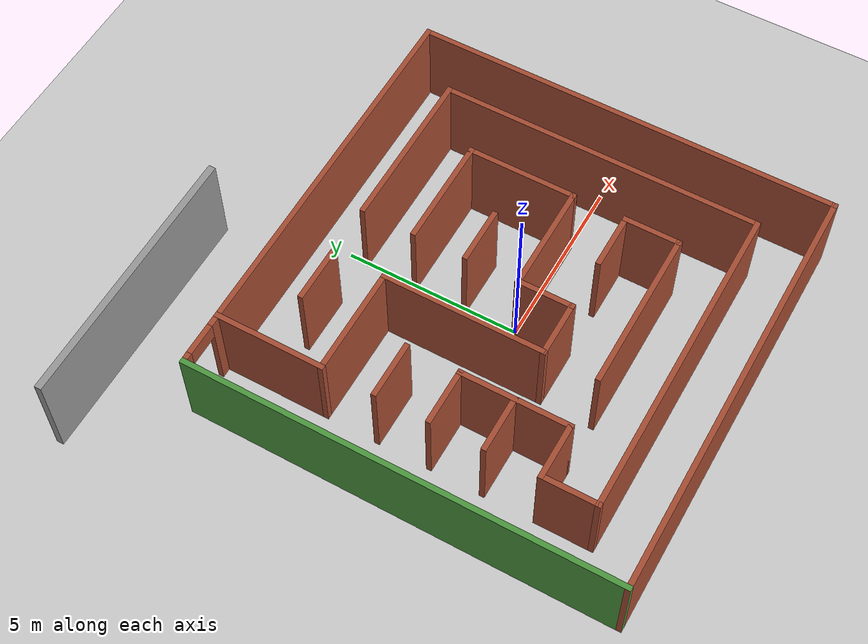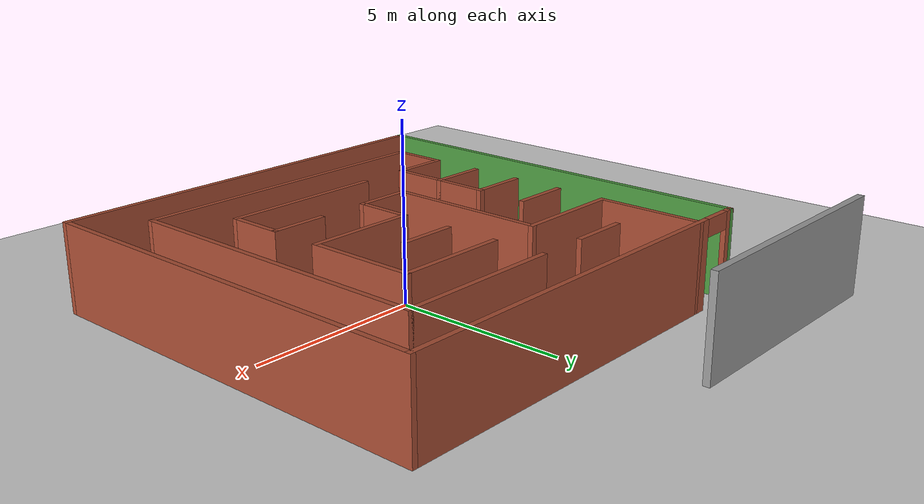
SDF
<sdf version="1.6">
 <world name="default">
  <light name="sun" type="directional">
   <pose>0 0 10 0 -0 0</pose>
   <diffuse>0.8 0.8 0.8 1</diffuse>
   <specular>0.1 0.1 0.1 1</specular>
   <attenuation>
    <range>1000</range>
    <constant>0.9</constant>
    <linear>0.01</linear>
    <quadratic>0.001</quadratic>
   </attenuation>
   <direction>-0.5 0.5 -1</direction>
  </light>
  <model name="ground_plane">
   <static>1</static>
   <link name="link">
    <collision name="collision">
     <geometry><plane><normal>0 0 1</normal><size>100 100</size></plane></geometry>
     <surface><friction><ode><mu>100</mu><mu2>50</mu2></ode></friction></surface>
    </collision>
    <visual name="visual">
     <cast_shadows>0</cast_shadows>
     <geometry><plane><normal>0 0 1</normal><size>100 100</size></plane></geometry>
     <material>
      <script><uri>file://media/materials/scripts/gazebo.material</uri><name>Gazebo/Grey</name></script>
     </material>
    </visual>
   </link>
  </model>
  <gravity>0 0 -9.8</gravity>
  <magnetic_field>6e-06 2.3e-05 -4.2e-05</magnetic_field>
  <atmosphere type="adiabatic"/>
  <physics name="default_physics" default="0" type="ode">
   <max_step_size>0.001</max_step_size>
   <real_time_factor>1</real_time_factor>
   <real_time_update_rate>1000</real_time_update_rate>
  </physics>
  <scene><ambient>0.4 0.4 0.4 1</ambient><background>0.7 0.7 0.7 1</background><shadows>1</shadows></scene>
  <spherical_coordinates>
   <surface_model>EARTH_WGS84</surface_model>
   <latitude_deg>0</latitude_deg>
   <longitude_deg>0</longitude_deg>
   <elevation>0</elevation>
   <heading_deg>0</heading_deg>
  </spherical_coordinates>
  <model name="maze12_brick">
   <link name="Wall_0">
    <collision name="Wall_0_Collision">
     <geometry><box><size>12.15 0.15 2.5</size></box></geometry>
     <pose>0 0 1.25 0 -0 0</pose>
    </collision>
    <visual name="Wall_0_Visual">
     <pose>0 0 1.25 0 -0 0</pose>
     <geometry><box><size>12.15 0.15 2.5</size></box></geometry>
     <material>
      <script>
       <uri>model://materials/scripts</uri>
       <uri>model://materials/textures</uri>
       <name>GrassTest</name>
      </script>
      <ambient>1 1 1 1</ambient>
     </material>
    </visual>
    <pose>-6 0 0 0 -0 1.5708</pose>
   </link>
   <link name="Wall_1">
    <pose>0 6 0 0 -0 0</pose>
    <visual name="Wall_1_Visual_0">
     <pose>-5.9077 0 1.25 0 -0 0</pose>
     <geometry><box><size>0.334593 0.15 2.5</size></box></geometry>
     <material>
      <script><uri>file://media/materials/scripts/gazebo.material</uri><name>Gazebo/Bricks</name></script>
      <ambient>1 1 1 1</ambient>
     </material>
    </visual>
    <collision name="Wall_1_Collision_0">
     <geometry><box><size>0.334593 0.15 2.5</size></box></geometry>
     <pose>-5.9077 0 1.25 0 -0 0</pose>
    </collision>
    <visual name="Wall_1_Visual_1">
     <pose>0.617297 0 1.25 0 -0 0</pose>
     <geometry><box><size>10.9154 0.15 2.5</size></box></geometry>
     <material>
      <script><uri>file://media/materials/scripts/gazebo.material</uri><name>Gazebo/Bricks</name></script>
      <ambient>1 1 1 1</ambient>
     </material>
    </visual>
    <collision name="Wall_1_Collision_1">
     <geometry><box><size>10.9154 0.15 2.5</size></box></geometry>
     <pose>0.617297 0 1.25 0 -0 0</pose>
    </collision>
    <visual name="Wall_1_Visual_2">
     <pose>-5.29041 0 2.25 0 -0 0</pose>
     <geometry><box><size>0.9 0.15 0.5</size></box></geometry>
     <material>
      <script><uri>file://media/materials/scripts/gazebo.material</uri><name>Gazebo/Bricks</name></script>
      <ambient>1 1 1 1</ambient>
     </material>
    </visual>
    <collision name="Wall_1_Collision_2">
     <geometry><box><size>0.9 0.15 0.5</size></box></geometry>
     <pose>-5.29041 0 2.25 0 -0 0</pose>
    </collision>
   </link>
   <link name="Wall_2">
    <collision name="Wall_2_Collision">
     <geometry><box><size>12.15 0.15 2.5</size></box></geometry>
     <pose>0 0 1.25 0 -0 0</pose>
    </collision>
    <visual name="Wall_2_Visual">
     <pose>0 0 1.25 0 -0 0</pose>
     <geometry><box><size>12.15 0.15 2.5</size></box></geometry>
     <material>
      <script><uri>file://media/materials/scripts/gazebo.material</uri><name>Gazebo/Bricks</name></script>
      <ambient>1 1 1 1</ambient>
     </material>
    </visual>
    <pose>6 0 0 0 0 -1.5708</pose>
   </link>
   <link name="Wall_26">
    <collision name="Wall_26_Collision">
     <geometry><box><size>3.15 0.15 2.5</size></box></geometry>
     <pose>0 0 1.25 0 -0 0</pose>
    </collision>
    <visual name="Wall_26_Visual">
     <pose>0 0 1.25 0 -0 0</pose>
     <geometry><box><size>3.15 0.15 2.5</size></box></geometry>
     <material>
      <script><uri>file://media/materials/scripts/gazebo.material</uri><name>Gazebo/Bricks</name></script>
      <ambient>1 1 1 1</ambient>
     </material>
    </visual>
    <pose>1.5 0 0 0 -0 0</pose>
   </link>
   <link name="Wall_27">
    <collision name="Wall_27_Collision">
     <geometry><box><size>3.15 0.15 2.5</size></box></geometry>
     <pose>0 0 1.25 0 -0 0</pose>
    </collision>
    <visual name="Wall_27_Visual">
     <pose>0 0 1.25 0 -0 0</pose>
     <geometry><box><size>3.15 0.15 2.5</size></box></geometry>
     <material>
      <script><uri>file://media/materials/scripts/gazebo.material</uri><name>Gazebo/Bricks</name></script>
      <ambient>1 1 1 1</ambient>
     </material>
    </visual>
    <pose>3 1.5 0 0 -0 1.5708</pose>
   </link>
   <link name="Wall_28">
    <collision name="Wall_28_Collision">
     <geometry><box><size>3.15 0.15 2.5</size></box></geometry>
     <pose>0 0 1.25 0 -0 0</pose>
    </collision>
    <visual name="Wall_28_Visual">
     <pose>0 0 1.25 0 -0 0</pose>
     <geometry><box><size>3.15 0.15 2.5</size></box></geometry>
     <material>
      <script><uri>file://media/materials/scripts/gazebo.material</uri><name>Gazebo/Bricks</name></script>
      <ambient>1 1 1 1</ambient>
     </material>
    </visual>
    <pose>1.5 3 0 0 -0 3.14159</pose>
   </link>
   <link name="Wall_3">
    <collision name="Wall_3_Collision">
     <geometry><box><size>12.15 0.15 2.5</size></box></geometry>
     <pose>0 0 1.25 0 -0 0</pose>
    </collision>
    <visual name="Wall_3_Visual">
     <pose>0 0 1.25 0 -0 0</pose>
     <geometry><box><size>12.15 0.15 2.5</size></box></geometry>
     <material>
      <script><uri>file://media/materials/scripts/gazebo.material</uri><name>Gazebo/Bricks</name></script>
      <ambient>1 1 1 1</ambient>
     </material>
    </visual>
    <pose>0 -6 0 0 -0 3.14159</pose>
   </link>
   <link name="Wall_30">
    <collision name="Wall_30_Collision">
     <geometry><box><size>4.65 0.15 2.5</size></box></geometry>
     <pose>0 0 1.25 0 -0 0</pose>
    </collision>
    <visual name="Wall_30_Visual">
     <pose>0 0 1.25 0 -0 0</pose>
     <geometry><box><size>4.65 0.15 2.5</size></box></geometry>
     <material>
      <script><uri>file://media/materials/scripts/gazebo.material</uri><name>Gazebo/Bricks</name></script>
      <ambient>1 1 1 1</ambient>
     </material>
    </visual>
    <pose>2.25 4.5 0 0 -0 0</pose>
   </link>
   <link name="Wall_31">
    <collision name="Wall_31_Collision">
     <geometry><box><size>9.15 0.15 2.5</size></box></geometry>
     <pose>0 0 1.25 0 -0 0</pose>
    </collision>
    <visual name="Wall_31_Visual">
     <pose>0 0 1.25 0 -0 0</pose>
     <geometry><box><size>9.15 0.15 2.5</size></box></geometry>
     <material>
      <script><uri>file://media/materials/scripts/gazebo.material</uri><name>Gazebo/Bricks</name></script>
      <ambient>1 1 1 1</ambient>
     </material>
    </visual>
    <pose>4.5 0 0 0 0 -1.5708</pose>
   </link>
   <link name="Wall_32">
    <collision name="Wall_32_Collision">
     <geometry><box><size>9.15 0.15 2.5</size></box></geometry>
     <pose>0 0 1.25 0 -0 0</pose>
    </collision>
    <visual name="Wall_32_Visual">
     <pose>0 0 1.25 0 -0 0</pose>
     <geometry><box><size>9.15 0.15 2.5</size></box></geometry>
     <material>
      <script><uri>file://media/materials/scripts/gazebo.material</uri><name>Gazebo/Bricks</name></script>
      <ambient>1 1 1 1</ambient>
     </material>
    </visual>
    <pose>0 -4.5 0 0 -0 3.14159</pose>
   </link>
   <link name="Wall_33">
    <collision name="Wall_33_Collision">
     <geometry><box><size>1.65 0.15 2.5</size></box></geometry>
     <pose>0 0 1.25 0 -0 0</pose>
    </collision>
    <visual name="Wall_33_Visual">
     <pose>0 0 1.25 0 -0 0</pose>
     <geometry><box><size>1.65 0.15 2.5</size></box></geometry>
     <material>
      <script><uri>file://media/materials/scripts/gazebo.material</uri><name>Gazebo/Bricks</name></script>
      <ambient>1 1 1 1</ambient>
     </material>
    </visual>
    <pose>-4.5 -3.75 0 0 -0 1.5708</pose>
   </link>
   <link name="Wall_34">
    <collision name="Wall_34_Collision">
     <geometry><box><size>1.65 0.15 2.5</size></box></geometry>
     <pose>0 0 1.25 0 -0 0</pose>
    </collision>
    <visual name="Wall_34_Visual">
     <pose>0 0 1.25 0 -0 0</pose>
     <geometry><box><size>1.65 0.15 2.5</size></box></geometry>
     <material>
      <script><uri>file://media/materials/scripts/gazebo.material</uri><name>Gazebo/Bricks</name></script>
      <ambient>1 1 1 1</ambient>
     </material>
    </visual>
    <pose>-3.75 -3 0 0 -0 0</pose>
   </link>
   <link name="Wall_35">
    <collision name="Wall_35_Collision">
     <geometry><box><size>3.15 0.15 2.5</size></box></geometry>
     <pose>0 0 1.25 0 -0 0</pose>
    </collision>
    <visual name="Wall_35_Visual">
     <pose>0 0 1.25 0 -0 0</pose>
     <geometry><box><size>3.15 0.15 2.5</size></box></geometry>
     <material>
      <script><uri>file://media/materials/scripts/gazebo.material</uri><name>Gazebo/Bricks</name></script>
      <ambient>1 1 1 1</ambient>
     </material>
    </visual>
    <pose>-3 -1.5 0 0 -0 1.5708</pose>
   </link>
   <link name="Wall_38">
    <collision name="Wall_38_Collision">
     <geometry><box><size>1.65 0.15 2.5</size></box></geometry>
     <pose>0 0 1.25 0 -0 0</pose>
    </collision>
    <visual name="Wall_38_Visual">
     <pose>0 0 1.25 0 -0 0</pose>
     <geometry><box><size>1.65 0.15 2.5</size></box></geometry>
     <material>
      <script><uri>file://media/materials/scripts/gazebo.material</uri><name>Gazebo/Bricks</name></script>
      <ambient>1 1 1 1</ambient>
     </material>
    </visual>
    <pose>0 -0.75 0 0 0 -1.5708</pose>
   </link>
   <link name="Wall_39">
    <collision name="Wall_39_Collision">
     <geometry><box><size>1.65 0.15 2.5</size></box></geometry>
     <pose>0 0 1.25 0 -0 0</pose>
    </collision>
    <visual name="Wall_39_Visual">
     <pose>0 0 1.25 0 -0 0</pose>
     <geometry><box><size>1.65 0.15 2.5</size></box></geometry>
     <material>
      <script><uri>file://media/materials/scripts/gazebo.material</uri><name>Gazebo/Bricks</name></script>
      <ambient>1 1 1 1</ambient>
     </material>
    </visual>
    <pose>-0.75 -1.5 0 0 -0 3.14159</pose>
   </link>
   <link name="Wall_40">
    <collision name="Wall_40_Collision">
     <geometry><box><size>4.65 0.15 2.5</size></box></geometry>
     <pose>0 0 1.25 0 -0 0</pose>
    </collision>
    <visual name="Wall_40_Visual">
     <pose>0 0 1.25 0 -0 0</pose>
     <geometry><box><size>4.65 0.15 2.5</size></box></geometry>
     <material>
      <script><uri>file://media/materials/scripts/gazebo.material</uri><name>Gazebo/Bricks</name></script>
      <ambient>1 1 1 1</ambient>
     </material>
    </visual>
    <pose>-1.5 0.75 0 0 -0 1.5708</pose>
   </link>
   <link name="Wall_41">
    <collision name="Wall_41_Collision">
     <geometry><box><size>3.15 0.15 2.5</size></box></geometry>
     <pose>0 0 1.25 0 -0 0</pose>
    </collision>
    <visual name="Wall_41_Visual">
     <pose>0 0 1.25 0 -0 0</pose>
     <geometry><box><size>3.15 0.15 2.5</size></box></geometry>
     <material>
      <script><uri>file://media/materials/scripts/gazebo.material</uri><name>Gazebo/Bricks</name></script>
      <ambient>1 1 1 1</ambient>
     </material>
    </visual>
    <pose>-3 3 0 0 -0 3.14159</pose>
   </link>
   <link name="Wall_42">
    <collision name="Wall_42_Collision">
     <geometry><box><size>3.15 0.15 2.5</size></box></geometry>
     <pose>0 0 1.25 0 -0 0</pose>
    </collision>
    <visual name="Wall_42_Visual">
     <pose>0 0 1.25 0 -0 0</pose>
     <geometry><box><size>3.15 0.15 2.5</size></box></geometry>
     <material>
      <script><uri>file://media/materials/scripts/gazebo.material</uri><name>Gazebo/Bricks</name></script>
      <ambient>1 1 1 1</ambient>
     </material>
    </visual>
    <pose>-4.5 4.5 0 0 -0 1.5708</pose>
   </link>
   <link name="Wall_53">
    <collision name="Wall_53_Collision">
     <geometry><box><size>1.65 0.15 2.5</size></box></geometry>
     <pose>0 0 1.25 0 -0 0</pose>
    </collision>
    <visual name="Wall_53_Visual">
     <pose>0 0 1.25 0 -0 0</pose>
     <geometry><box><size>1.65 0.15 2.5</size></box></geometry>
     <material>
      <script><uri>file://media/materials/scripts/gazebo.material</uri><name>Gazebo/Bricks</name></script>
      <ambient>1 1 1 1</ambient>
     </material>
    </visual>
    <pose>-3.75 -1.5 0 0 -0 3.14159</pose>
   </link>
   <link name="Wall_59">
    <collision name="Wall_59_Collision">
     <geometry><box><size>1.65 0.15 2.5</size></box></geometry>
     <pose>0 0 1.25 0 -0 0</pose>
    </collision>
    <visual name="Wall_59_Visual">
     <pose>0 0 1.25 0 -0 0</pose>
     <geometry><box><size>1.65 0.15 2.5</size></box></geometry>
     <material>
      <script><uri>file://media/materials/scripts/gazebo.material</uri><name>Gazebo/Bricks</name></script>
      <ambient>1 1 1 1</ambient>
     </material>
    </visual>
    <pose>-3.75 0 0 0 -0 3.14159</pose>
   </link>
   <link name="Wall_61">
    <collision name="Wall_61_Collision">
     <geometry><box><size>1.65 0.15 2.5</size></box></geometry>
     <pose>0 0 1.25 0 -0 0</pose>
    </collision>
    <visual name="Wall_61_Visual">
     <pose>0 0 1.25 0 -0 0</pose>
     <geometry><box><size>1.65 0.15 2.5</size></box></geometry>
     <material>
      <script><uri>file://media/materials/scripts/gazebo.material</uri><name>Gazebo/Bricks</name></script>
      <ambient>1 1 1 1</ambient>
     </material>
    </visual>
    <pose>-3.75 1.5 0 0 -0 0</pose>
   </link>
   <link name="Wall_63">
    <collision name="Wall_63_Collision">
     <geometry><box><size>1.65 0.15 2.5</size></box></geometry>
     <pose>0 0 1.25 0 -0 0</pose>
    </collision>
    <visual name="Wall_63_Visual">
     <pose>0 0 1.25 0 -0 0</pose>
     <geometry><box><size>1.65 0.15 2.5</size></box></geometry>
     <material>
      <script><uri>file://media/materials/scripts/gazebo.material</uri><name>Gazebo/Bricks</name></script>
      <ambient>1 1 1 1</ambient>
     </material>
    </visual>
    <pose>2.25 -1.5 0 0 -0 0</pose>
   </link>
   <link name="Wall_64">
    <collision name="Wall_64_Collision">
     <geometry><box><size>1.65 0.15 2.5</size></box></geometry>
     <pose>0 0 1.25 0 -0 0</pose>
    </collision>
    <visual name="Wall_64_Visual">
     <pose>0 0 1.25 0 -0 0</pose>
     <geometry><box><size>1.65 0.15 2.5</size></box></geometry>
     <material>
      <script><uri>file://media/materials/scripts/gazebo.material</uri><name>Gazebo/Bricks</name></script>
      <ambient>1 1 1 1</ambient>
     </material>
    </visual>
    <pose>3 -2.25 0 0 0 -1.5708</pose>
   </link>
   <link name="Wall_65">
    <collision name="Wall_65_Collision">
     <geometry><box><size>4.65 0.15 2.5</size></box></geometry>
     <pose>0 0 1.25 0 -0 0</pose>
    </collision>
    <visual name="Wall_65_Visual">
     <pose>0 0 1.25 0 -0 0</pose>
     <geometry><box><size>4.65 0.15 2.5</size></box></geometry>
     <material>
      <script><uri>file://media/materials/scripts/gazebo.material</uri><name>Gazebo/Bricks</name></script>
      <ambient>1 1 1 1</ambient>
     </material>
    </visual>
    <pose>0.75 -3 0 0 -0 3.14159</pose>
   </link>
   <link name="Wall_67">
    <collision name="Wall_67_Collision">
     <geometry><box><size>1.65 0.15 2.5</size></box></geometry>
     <pose>0 0 1.25 0 -0 0</pose>
    </collision>
    <visual name="Wall_67_Visual">
     <pose>0 0 1.25 0 -0 0</pose>
     <geometry><box><size>1.65 0.15 2.5</size></box></geometry>
     <material>
      <script><uri>file://media/materials/scripts/gazebo.material</uri><name>Gazebo/Bricks</name></script>
      <ambient>1 1 1 1</ambient>
     </material>
    </visual>
    <pose>-2.25 4.5 0 0 -0 0</pose>
   </link>
   <link name="Wall_69">
    <collision name="Wall_69_Collision">
     <geometry><box><size>1.65 0.15 2.5</size></box></geometry>
     <pose>0 0 1.25 0 -0 0</pose>
    </collision>
    <visual name="Wall_69_Visual">
     <pose>0 0 1.25 0 -0 0</pose>
     <geometry><box><size>1.65 0.15 2.5</size></box></geometry>
     <material>
      <script><uri>file://media/materials/scripts/gazebo.material</uri><name>Gazebo/Bricks</name></script>
      <ambient>1 1 1 1</ambient>
     </material>
    </visual>
    <pose>0.75 1.5 0 0 -0 0</pose>
   </link>
   <static>1</static>
  </model>
  <model name="grey_wall">
   <static>1</static>
   <link name="link">
    <pose>0 0 1.4 0 -0 0</pose>
    <collision name="collision"><geometry><box><size>7.5 0.2 2.8</size></box></geometry></collision>
    <visual name="visual">
     <cast_shadows>0</cast_shadows>
     <geometry><box><size>7.5 0.2 2.8</size></box></geometry>
     <material>
      <script>
       <uri>model://grey_wall/materials/scripts</uri>
       <uri>model://grey_wall/materials/textures</uri>
       <name>vrc/grey_wall</name>
      </script>
     </material>
    </visual>
   </link>
   <pose>-4.69284 8.46679 0 0 -0 0</pose>
  </model>
 </world>
</sdf>
